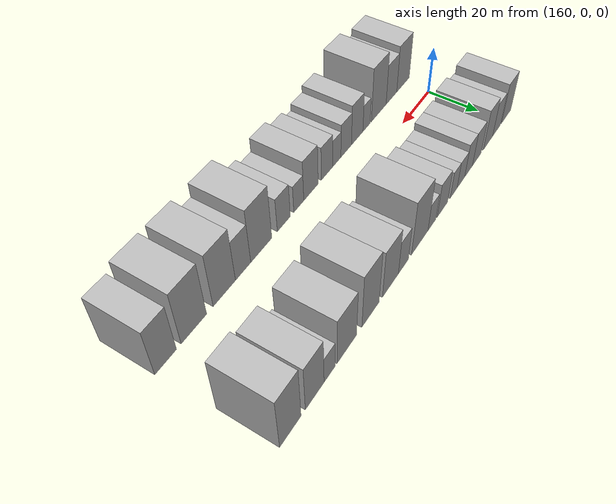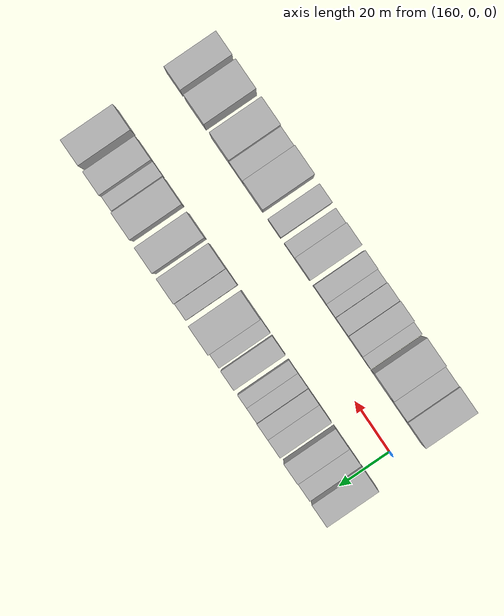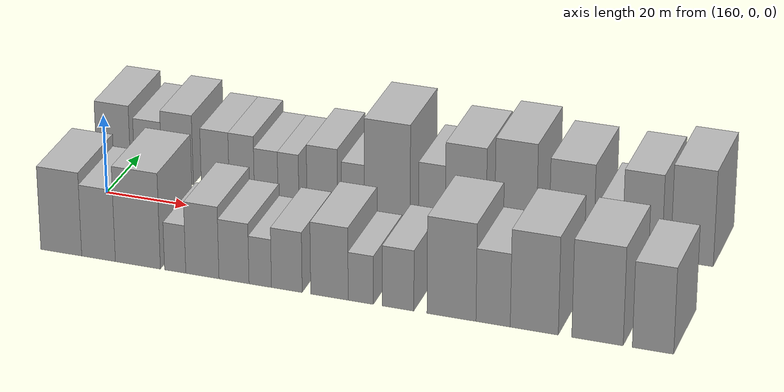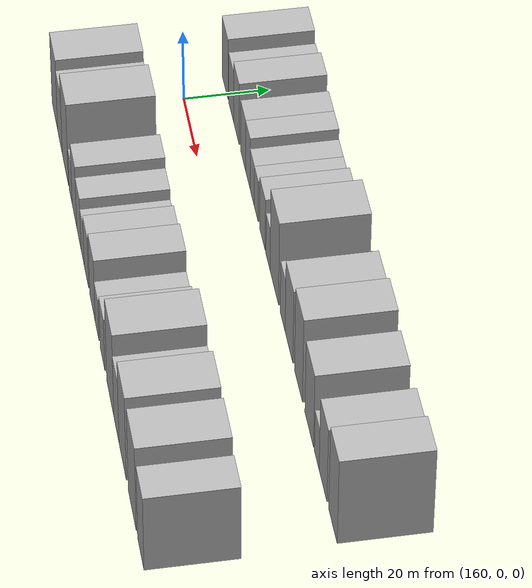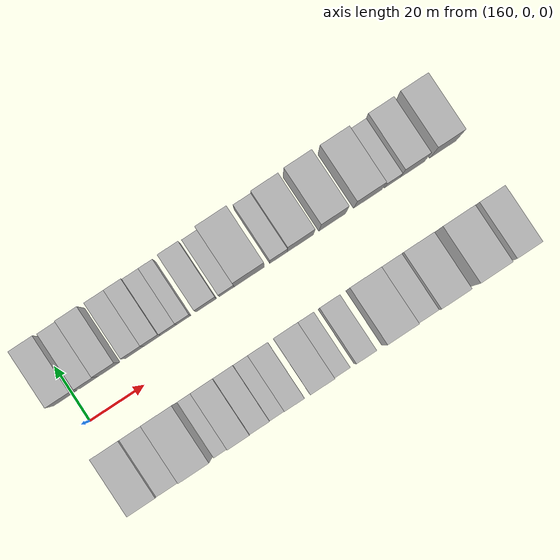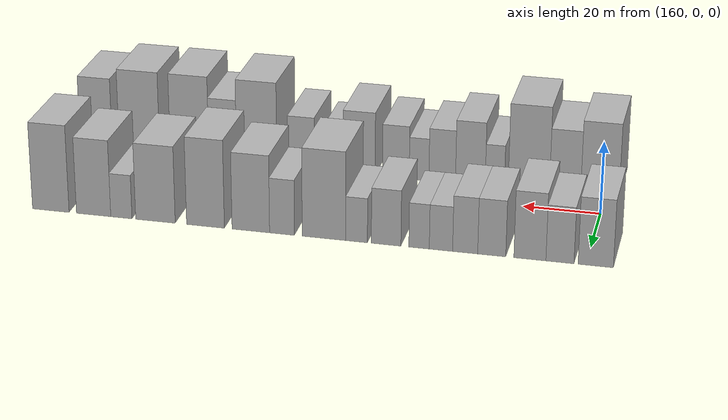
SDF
<sdf version="1.6">
 <world name="default">
  <model name="building_16">
   <static>1</static>
   <pose>157.5743 20.0000 0 0.000000 0.000000 1.570796</pose>
   <link name="link">
    <pose>0 0 9.00 0 0 0</pose>
    <collision name="collision"><geometry><box><size>20.0000 8.5798 18.0000</size></box></geometry></collision>
    <visual name="visual">
     <cast_shadows>0</cast_shadows>
     <geometry><box><size>20.0000 8.5798 18.0000</size></box></geometry>
     <material>
      <script>
       <uri>model://HANNAS_wall/materials/scripts</uri>
       <uri>model://HANNAS_wall/materials/textures</uri>
       <name>vrc/HANNAS_wall</name>
      </script>
     </material>
    </visual>
   </link>
  </model>
  <model name="building_17">
   <static>1</static>
   <pose>166.3001 20.0000 0 0.000000 0.000000 1.570796</pose>
   <link name="link">
    <pose>0 0 7.50 0 0 0</pose>
    <collision name="collision"><geometry><box><size>20.0000 6.8718 15.0000</size></box></geometry></collision>
    <visual name="visual">
     <cast_shadows>0</cast_shadows>
     <geometry><box><size>20.0000 6.8718 15.0000</size></box></geometry>
     <material>
      <script>
       <uri>model://HANNAS_wall/materials/scripts</uri>
       <uri>model://HANNAS_wall/materials/textures</uri>
       <name>vrc/HANNAS_wall</name>
      </script>
     </material>
    </visual>
   </link>
  </model>
  <model name="building_18">
   <static>1</static>
   <pose>173.6756 20.0000 0 0.000000 0.000000 1.570796</pose>
   <link name="link">
    <pose>0 0 9.00 0 0 0</pose>
    <collision name="collision"><geometry><box><size>20.0000 7.8792 18.0000</size></box></geometry></collision>
    <visual name="visual">
     <cast_shadows>0</cast_shadows>
     <geometry><box><size>20.0000 7.8792 18.0000</size></box></geometry>
     <material>
      <script>
       <uri>model://HANNAS_wall/materials/scripts</uri>
       <uri>model://HANNAS_wall/materials/textures</uri>
       <name>vrc/HANNAS_wall</name>
      </script>
     </material>
    </visual>
   </link>
  </model>
  <model name="building_19">
   <static>1</static>
   <pose>183.0919 20.0000 0 0.000000 0.000000 1.570796</pose>
   <link name="link">
    <pose>0 0 7.50 0 0 0</pose>
    <collision name="collision"><geometry><box><size>20.0000 6.9536 15.0000</size></box></geometry></collision>
    <visual name="visual">
     <cast_shadows>0</cast_shadows>
     <geometry><box><size>20.0000 6.9536 15.0000</size></box></geometry>
     <material>
      <script>
       <uri>model://HANNAS_wall/materials/scripts</uri>
       <uri>model://HANNAS_wall/materials/textures</uri>
       <name>vrc/HANNAS_wall</name>
      </script>
     </material>
    </visual>
   </link>
  </model>
  <model name="building_20">
   <static>1</static>
   <pose>189.6906 20.0000 0 0.000000 0.000000 1.570796</pose>
   <link name="link">
    <pose>0 0 7.50 0 0 0</pose>
    <collision name="collision"><geometry><box><size>20.0000 6.2437 15.0000</size></box></geometry></collision>
    <visual name="visual">
     <cast_shadows>0</cast_shadows>
     <geometry><box><size>20.0000 6.2437 15.0000</size></box></geometry>
     <material>
      <script>
       <uri>model://HANNAS_wall/materials/scripts</uri>
       <uri>model://HANNAS_wall/materials/textures</uri>
       <name>vrc/HANNAS_wall</name>
      </script>
     </material>
    </visual>
   </link>
  </model>
  <model name="building_21">
   <static>1</static>
   <pose>195.7336 20.0000 0 0.000000 0.000000 1.570796</pose>
   <link name="link">
    <pose>0 0 6.00 0 0 0</pose>
    <collision name="collision"><geometry><box><size>20.0000 5.8425 12.0000</size></box></geometry></collision>
    <visual name="visual">
     <cast_shadows>0</cast_shadows>
     <geometry><box><size>20.0000 5.8425 12.0000</size></box></geometry>
     <material>
      <script>
       <uri>model://HANNAS_wall/materials/scripts</uri>
       <uri>model://HANNAS_wall/materials/textures</uri>
       <name>vrc/HANNAS_wall</name>
      </script>
     </material>
    </visual>
   </link>
  </model>
  <model name="building_22">
   <static>1</static>
   <pose>201.2205 20.0000 0 0.000000 0.000000 1.570796</pose>
   <link name="link">
    <pose>0 0 6.00 0 0 0</pose>
    <collision name="collision"><geometry><box><size>20.0000 5.1312 12.0000</size></box></geometry></collision>
    <visual name="visual">
     <cast_shadows>0</cast_shadows>
     <geometry><box><size>20.0000 5.1312 12.0000</size></box></geometry>
     <material>
      <script>
       <uri>model://HANNAS_wall/materials/scripts</uri>
       <uri>model://HANNAS_wall/materials/textures</uri>
       <name>vrc/HANNAS_wall</name>
      </script>
     </material>
    </visual>
   </link>
  </model>
  <model name="building_23">
   <static>1</static>
   <pose>209.5263 20.0000 0 0.000000 0.000000 1.570796</pose>
   <link name="link">
    <pose>0 0 7.50 0 0 0</pose>
    <collision name="collision"><geometry><box><size>20.0000 7.4806 15.0000</size></box></geometry></collision>
    <visual name="visual">
     <cast_shadows>0</cast_shadows>
     <geometry><box><size>20.0000 7.4806 15.0000</size></box></geometry>
     <material>
      <script>
       <uri>model://HANNAS_wall/materials/scripts</uri>
       <uri>model://HANNAS_wall/materials/textures</uri>
       <name>vrc/HANNAS_wall</name>
      </script>
     </material>
    </visual>
   </link>
  </model>
  <model name="building_24">
   <static>1</static>
   <pose>217.0332 20.0000 0 0.000000 0.000000 1.570796</pose>
   <link name="link">
    <pose>0 0 6.00 0 0 0</pose>
    <collision name="collision"><geometry><box><size>20.0000 5.5331 12.0000</size></box></geometry></collision>
    <visual name="visual">
     <cast_shadows>0</cast_shadows>
     <geometry><box><size>20.0000 5.5331 12.0000</size></box></geometry>
     <material>
      <script>
       <uri>model://HANNAS_wall/materials/scripts</uri>
       <uri>model://HANNAS_wall/materials/textures</uri>
       <name>vrc/HANNAS_wall</name>
      </script>
     </material>
    </visual>
   </link>
  </model>
  <model name="building_25">
   <static>1</static>
   <pose>225.3526 20.0000 0 0.000000 0.000000 1.570796</pose>
   <link name="link">
    <pose>0 0 12.00 0 0 0</pose>
    <collision name="collision"><geometry><box><size>20.0000 11.1056 24.0000</size></box></geometry></collision>
    <visual name="visual">
     <cast_shadows>0</cast_shadows>
     <geometry><box><size>20.0000 11.1056 24.0000</size></box></geometry>
     <material>
      <script>
       <uri>model://HANNAS_wall/materials/scripts</uri>
       <uri>model://HANNAS_wall/materials/textures</uri>
       <name>vrc/HANNAS_wall</name>
      </script>
     </material>
    </visual>
   </link>
  </model>
  <model name="building_26">
   <static>1</static>
   <pose>236.1133 20.0000 0 0.000000 0.000000 1.570796</pose>
   <link name="link">
    <pose>0 0 7.50 0 0 0</pose>
    <collision name="collision"><geometry><box><size>20.0000 6.4158 15.0000</size></box></geometry></collision>
    <visual name="visual">
     <cast_shadows>0</cast_shadows>
     <geometry><box><size>20.0000 6.4158 15.0000</size></box></geometry>
     <material>
      <script>
       <uri>model://HANNAS_wall/materials/scripts</uri>
       <uri>model://HANNAS_wall/materials/textures</uri>
       <name>vrc/HANNAS_wall</name>
      </script>
     </material>
    </visual>
   </link>
  </model>
  <model name="building_27">
   <static>1</static>
   <pose>244.1874 20.0000 0 0.000000 0.000000 1.570796</pose>
   <link name="link">
    <pose>0 0 10.50 0 0 0</pose>
    <collision name="collision"><geometry><box><size>20.0000 9.7324 21.0000</size></box></geometry></collision>
    <visual name="visual">
     <cast_shadows>0</cast_shadows>
     <geometry><box><size>20.0000 9.7324 21.0000</size></box></geometry>
     <material>
      <script>
       <uri>model://HANNAS_wall/materials/scripts</uri>
       <uri>model://HANNAS_wall/materials/textures</uri>
       <name>vrc/HANNAS_wall</name>
      </script>
     </material>
    </visual>
   </link>
  </model>
  <model name="building_28">
   <static>1</static>
   <pose>255.9991 20.0000 0 0.000000 0.000000 1.570796</pose>
   <link name="link">
    <pose>0 0 12.00 0 0 0</pose>
    <collision name="collision"><geometry><box><size>20.0000 9.8909 24.0000</size></box></geometry></collision>
    <visual name="visual">
     <cast_shadows>0</cast_shadows>
     <geometry><box><size>20.0000 9.8909 24.0000</size></box></geometry>
     <material>
      <script>
       <uri>model://HANNAS_wall/materials/scripts</uri>
       <uri>model://HANNAS_wall/materials/textures</uri>
       <name>vrc/HANNAS_wall</name>
      </script>
     </material>
    </visual>
   </link>
  </model>
  <model name="building_29">
   <static>1</static>
   <pose>269.1668 20.0000 0 0.000000 0.000000 1.570796</pose>
   <link name="link">
    <pose>0 0 10.50 0 0 0</pose>
    <collision name="collision"><geometry><box><size>20.0000 10.4446 21.0000</size></box></geometry></collision>
    <visual name="visual">
     <cast_shadows>0</cast_shadows>
     <geometry><box><size>20.0000 10.4446 21.0000</size></box></geometry>
     <material>
      <script>
       <uri>model://HANNAS_wall/materials/scripts</uri>
       <uri>model://HANNAS_wall/materials/textures</uri>
       <name>vrc/HANNAS_wall</name>
      </script>
     </material>
    </visual>
   </link>
  </model>
  <model name="building_30">
   <static>1</static>
   <pose>278.2109 20.0000 0 0.000000 0.000000 1.570796</pose>
   <link name="link">
    <pose>0 0 6.00 0 0 0</pose>
    <collision name="collision"><geometry><box><size>20.0000 5.6436 12.0000</size></box></geometry></collision>
    <visual name="visual">
     <cast_shadows>0</cast_shadows>
     <geometry><box><size>20.0000 5.6436 12.0000</size></box></geometry>
     <material>
      <script>
       <uri>model://HANNAS_wall/materials/scripts</uri>
       <uri>model://HANNAS_wall/materials/textures</uri>
       <name>vrc/HANNAS_wall</name>
      </script>
     </material>
    </visual>
   </link>
  </model>
  <model name="building_31">
   <static>1</static>
   <pose>285.6139 20.0000 0 0.000000 0.000000 1.570796</pose>
   <link name="link">
    <pose>0 0 10.50 0 0 0</pose>
    <collision name="collision"><geometry><box><size>20.0000 9.1622 21.0000</size></box></geometry></collision>
    <visual name="visual">
     <cast_shadows>0</cast_shadows>
     <geometry><box><size>20.0000 9.1622 21.0000</size></box></geometry>
     <material>
      <script>
       <uri>model://HANNAS_wall/materials/scripts</uri>
       <uri>model://HANNAS_wall/materials/textures</uri>
       <name>vrc/HANNAS_wall</name>
      </script>
     </material>
    </visual>
   </link>
  </model>
  <model name="building_32">
   <static>1</static>
   <pose>297.1153 20.0000 0 0.000000 0.000000 1.570796</pose>
   <link name="link">
    <pose>0 0 12.00 0 0 0</pose>
    <collision name="collision"><geometry><box><size>20.0000 9.8406 24.0000</size></box></geometry></collision>
    <visual name="visual">
     <cast_shadows>0</cast_shadows>
     <geometry><box><size>20.0000 9.8406 24.0000</size></box></geometry>
     <material>
      <script>
       <uri>model://HANNAS_wall/materials/scripts</uri>
       <uri>model://HANNAS_wall/materials/textures</uri>
       <name>vrc/HANNAS_wall</name>
      </script>
     </material>
    </visual>
   </link>
  </model>
  <model name="building_49">
   <static>1</static>
   <pose>161.4462 -20.0000 0 0.000000 0.000000 1.570796</pose>
   <link name="link">
    <pose>0 0 10.50 0 0 0</pose>
    <collision name="collision"><geometry><box><size>20.0000 9.9641 21.0000</size></box></geometry></collision>
    <visual name="visual">
     <cast_shadows>0</cast_shadows>
     <geometry><box><size>20.0000 9.9641 21.0000</size></box></geometry>
     <material>
      <script>
       <uri>model://HANNAS_wall/materials/scripts</uri>
       <uri>model://HANNAS_wall/materials/textures</uri>
       <name>vrc/HANNAS_wall</name>
      </script>
     </material>
    </visual>
   </link>
  </model>
  <model name="building_50">
   <static>1</static>
   <pose>170.5094 -20.0000 0 0.000000 0.000000 1.570796</pose>
   <link name="link">
    <pose>0 0 9.00 0 0 0</pose>
    <collision name="collision"><geometry><box><size>20.0000 8.1622 18.0000</size></box></geometry></collision>
    <visual name="visual">
     <cast_shadows>0</cast_shadows>
     <geometry><box><size>20.0000 8.1622 18.0000</size></box></geometry>
     <material>
      <script>
       <uri>model://HANNAS_wall/materials/scripts</uri>
       <uri>model://HANNAS_wall/materials/textures</uri>
       <name>vrc/HANNAS_wall</name>
      </script>
     </material>
    </visual>
   </link>
  </model>
  <model name="building_51">
   <static>1</static>
   <pose>180.0076 -20.0000 0 0.000000 0.000000 1.570796</pose>
   <link name="link">
    <pose>0 0 12.00 0 0 0</pose>
    <collision name="collision"><geometry><box><size>20.0000 10.8341 24.0000</size></box></geometry></collision>
    <visual name="visual">
     <cast_shadows>0</cast_shadows>
     <geometry><box><size>20.0000 10.8341 24.0000</size></box></geometry>
     <material>
      <script>
       <uri>model://HANNAS_wall/materials/scripts</uri>
       <uri>model://HANNAS_wall/materials/textures</uri>
       <name>vrc/HANNAS_wall</name>
      </script>
     </material>
    </visual>
   </link>
  </model>
  <model name="building_52">
   <static>1</static>
   <pose>188.9619 -20.0000 0 0.000000 0.000000 1.570796</pose>
   <link name="link">
    <pose>0 0 6.00 0 0 0</pose>
    <collision name="collision"><geometry><box><size>20.0000 5.0745 12.0000</size></box></geometry></collision>
    <visual name="visual">
     <cast_shadows>0</cast_shadows>
     <geometry><box><size>20.0000 5.0745 12.0000</size></box></geometry>
     <material>
      <script>
       <uri>model://HANNAS_wall/materials/scripts</uri>
       <uri>model://HANNAS_wall/materials/textures</uri>
       <name>vrc/HANNAS_wall</name>
      </script>
     </material>
    </visual>
   </link>
  </model>
  <model name="building_53">
   <static>1</static>
   <pose>195.4477 -20.0000 0 0.000000 0.000000 1.570796</pose>
   <link name="link">
    <pose>0 0 9.00 0 0 0</pose>
    <collision name="collision"><geometry><box><size>20.0000 7.8971 18.0000</size></box></geometry></collision>
    <visual name="visual">
     <cast_shadows>0</cast_shadows>
     <geometry><box><size>20.0000 7.8971 18.0000</size></box></geometry>
     <material>
      <script>
       <uri>model://HANNAS_wall/materials/scripts</uri>
       <uri>model://HANNAS_wall/materials/textures</uri>
       <name>vrc/HANNAS_wall</name>
      </script>
     </material>
    </visual>
   </link>
  </model>
  <model name="building_54">
   <static>1</static>
   <pose>202.9474 -20.0000 0 0.000000 0.000000 1.570796</pose>
   <link name="link">
    <pose>0 0 7.50 0 0 0</pose>
    <collision name="collision"><geometry><box><size>20.0000 7.1022 15.0000</size></box></geometry></collision>
    <visual name="visual">
     <cast_shadows>0</cast_shadows>
     <geometry><box><size>20.0000 7.1022 15.0000</size></box></geometry>
     <material>
      <script>
       <uri>model://HANNAS_wall/materials/scripts</uri>
       <uri>model://HANNAS_wall/materials/textures</uri>
       <name>vrc/HANNAS_wall</name>
      </script>
     </material>
    </visual>
   </link>
  </model>
  <model name="building_55">
   <static>1</static>
   <pose>209.1400 -20.0000 0 0.000000 0.000000 1.570796</pose>
   <link name="link">
    <pose>0 0 6.00 0 0 0</pose>
    <collision name="collision"><geometry><box><size>20.0000 5.2831 12.0000</size></box></geometry></collision>
    <visual name="visual">
     <cast_shadows>0</cast_shadows>
     <geometry><box><size>20.0000 5.2831 12.0000</size></box></geometry>
     <material>
      <script>
       <uri>model://HANNAS_wall/materials/scripts</uri>
       <uri>model://HANNAS_wall/materials/textures</uri>
       <name>vrc/HANNAS_wall</name>
      </script>
     </material>
    </visual>
   </link>
  </model>
  <model name="building_56">
   <static>1</static>
   <pose>215.3813 -20.0000 0 0.000000 0.000000 1.570796</pose>
   <link name="link">
    <pose>0 0 7.50 0 0 0</pose>
    <collision name="collision"><geometry><box><size>20.0000 7.1994 15.0000</size></box></geometry></collision>
    <visual name="visual">
     <cast_shadows>0</cast_shadows>
     <geometry><box><size>20.0000 7.1994 15.0000</size></box></geometry>
     <material>
      <script>
       <uri>model://HANNAS_wall/materials/scripts</uri>
       <uri>model://HANNAS_wall/materials/textures</uri>
       <name>vrc/HANNAS_wall</name>
      </script>
     </material>
    </visual>
   </link>
  </model>
  <model name="building_57">
   <static>1</static>
   <pose>225.3347 -20.0000 0 0.000000 0.000000 1.570796</pose>
   <link name="link">
    <pose>0 0 9.00 0 0 0</pose>
    <collision name="collision"><geometry><box><size>20.0000 8.7075 18.0000</size></box></geometry></collision>
    <visual name="visual">
     <cast_shadows>0</cast_shadows>
     <geometry><box><size>20.0000 8.7075 18.0000</size></box></geometry>
     <material>
      <script>
       <uri>model://HANNAS_wall/materials/scripts</uri>
       <uri>model://HANNAS_wall/materials/textures</uri>
       <name>vrc/HANNAS_wall</name>
      </script>
     </material>
    </visual>
   </link>
  </model>
  <model name="building_58">
   <static>1</static>
   <pose>232.6124 -20.0000 0 0.000000 0.000000 1.570796</pose>
   <link name="link">
    <pose>0 0 6.00 0 0 0</pose>
    <collision name="collision"><geometry><box><size>20.0000 5.8480 12.0000</size></box></geometry></collision>
    <visual name="visual">
     <cast_shadows>0</cast_shadows>
     <geometry><box><size>20.0000 5.8480 12.0000</size></box></geometry>
     <material>
      <script>
       <uri>model://HANNAS_wall/materials/scripts</uri>
       <uri>model://HANNAS_wall/materials/textures</uri>
       <name>vrc/HANNAS_wall</name>
      </script>
     </material>
    </visual>
   </link>
  </model>
  <model name="building_59">
   <static>1</static>
   <pose>241.1796 -20.0000 0 0.000000 0.000000 1.570796</pose>
   <link name="link">
    <pose>0 0 7.50 0 0 0</pose>
    <collision name="collision"><geometry><box><size>20.0000 7.2864 15.0000</size></box></geometry></collision>
    <visual name="visual">
     <cast_shadows>0</cast_shadows>
     <geometry><box><size>20.0000 7.2864 15.0000</size></box></geometry>
     <material>
      <script>
       <uri>model://HANNAS_wall/materials/scripts</uri>
       <uri>model://HANNAS_wall/materials/textures</uri>
       <name>vrc/HANNAS_wall</name>
      </script>
     </material>
    </visual>
   </link>
  </model>
  <model name="building_60">
   <static>1</static>
   <pose>253.3977 -20.0000 0 0.000000 0.000000 1.570796</pose>
   <link name="link">
    <pose>0 0 12.00 0 0 0</pose>
    <collision name="collision"><geometry><box><size>20.0000 11.1497 24.0000</size></box></geometry></collision>
    <visual name="visual">
     <cast_shadows>0</cast_shadows>
     <geometry><box><size>20.0000 11.1497 24.0000</size></box></geometry>
     <material>
      <script>
       <uri>model://HANNAS_wall/materials/scripts</uri>
       <uri>model://HANNAS_wall/materials/textures</uri>
       <name>vrc/HANNAS_wall</name>
      </script>
     </material>
    </visual>
   </link>
  </model>
  <model name="building_61">
   <static>1</static>
   <pose>262.8431 -20.0000 0 0.000000 0.000000 1.570796</pose>
   <link name="link">
    <pose>0 0 9.00 0 0 0</pose>
    <collision name="collision"><geometry><box><size>20.0000 7.7412 18.0000</size></box></geometry></collision>
    <visual name="visual">
     <cast_shadows>0</cast_shadows>
     <geometry><box><size>20.0000 7.7412 18.0000</size></box></geometry>
     <material>
      <script>
       <uri>model://HANNAS_wall/materials/scripts</uri>
       <uri>model://HANNAS_wall/materials/textures</uri>
       <name>vrc/HANNAS_wall</name>
      </script>
     </material>
    </visual>
   </link>
  </model>
  <model name="building_62">
   <static>1</static>
   <pose>272.1034 -20.0000 0 0.000000 0.000000 1.570796</pose>
   <link name="link">
    <pose>0 0 12.00 0 0 0</pose>
    <collision name="collision"><geometry><box><size>20.0000 10.7795 24.0000</size></box></geometry></collision>
    <visual name="visual">
     <cast_shadows>0</cast_shadows>
     <geometry><box><size>20.0000 10.7795 24.0000</size></box></geometry>
     <material>
      <script>
       <uri>model://HANNAS_wall/materials/scripts</uri>
       <uri>model://HANNAS_wall/materials/textures</uri>
       <name>vrc/HANNAS_wall</name>
      </script>
     </material>
    </visual>
   </link>
  </model>
  <model name="building_63">
   <static>1</static>
   <pose>286.2044 -20.0000 0 0.000000 0.000000 1.570796</pose>
   <link name="link">
    <pose>0 0 12.00 0 0 0</pose>
    <collision name="collision"><geometry><box><size>20.0000 11.4225 24.0000</size></box></geometry></collision>
    <visual name="visual">
     <cast_shadows>0</cast_shadows>
     <geometry><box><size>20.0000 11.4225 24.0000</size></box></geometry>
     <material>
      <script>
       <uri>model://HANNAS_wall/materials/scripts</uri>
       <uri>model://HANNAS_wall/materials/textures</uri>
       <name>vrc/HANNAS_wall</name>
      </script>
     </material>
    </visual>
   </link>
  </model>
  <model name="building_64">
   <static>1</static>
   <pose>298.4695 -20.0000 0 0.000000 0.000000 1.570796</pose>
   <link name="link">
    <pose>0 0 10.50 0 0 0</pose>
    <collision name="collision"><geometry><box><size>20.0000 9.1075 21.0000</size></box></geometry></collision>
    <visual name="visual">
     <cast_shadows>0</cast_shadows>
     <geometry><box><size>20.0000 9.1075 21.0000</size></box></geometry>
     <material>
      <script>
       <uri>model://HANNAS_wall/materials/scripts</uri>
       <uri>model://HANNAS_wall/materials/textures</uri>
       <name>vrc/HANNAS_wall</name>
      </script>
     </material>
    </visual>
   </link>
  </model>
 </world>
</sdf>
